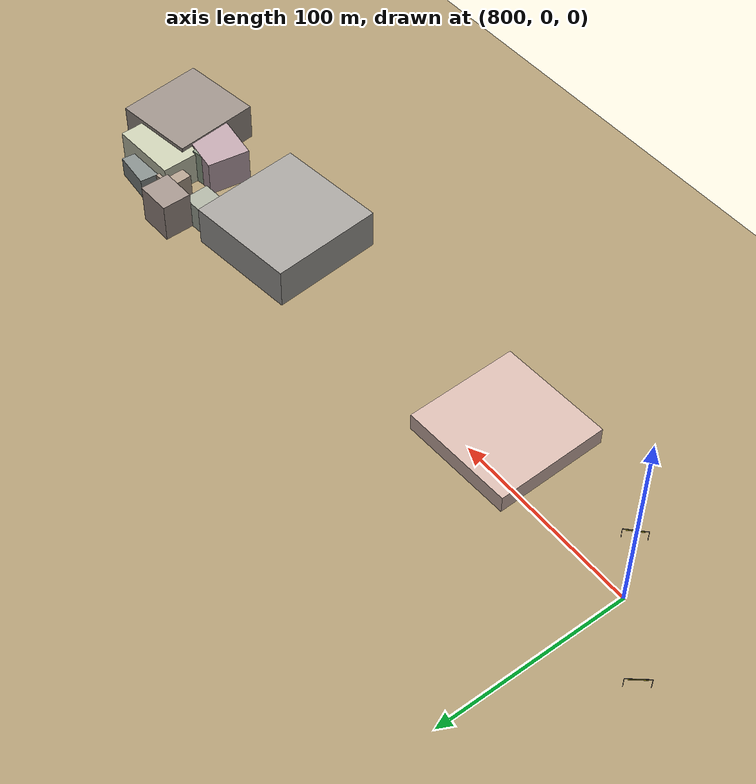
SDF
<sdf version="1.9">
 <world name="crossroad_world">
  <model name="ground_plane">
   <static>true</static>
   <pose>0 0 -0.05 0 0 0</pose>
   <link name="link">
    <collision name="collision">
     <geometry><plane><normal>0 0 1</normal><size>10000 10000</size></plane></geometry>
    </collision>
    <visual name="visual">
     <geometry><plane><normal>0 0 1</normal><size>15000 15000</size></plane></geometry>
     <material><ambient>0.68 0.60 0.45 1</ambient><diffuse>0.68 0.60 0.45 1</diffuse></material>
    </visual>
   </link>
  </model>
  <model name="gantry_14">
   <static>true</static>
   <pose>766.140 24.612 0 0 0 0.875</pose>
   <link name="link">
    <visual name="post_l">
     <pose>-5.700 0 2.925 0 0 0</pose>
     <geometry><cylinder><radius>0.1</radius><length>5.85</length></cylinder></geometry>
     <material><ambient>0.30 0.30 0.35 1</ambient><diffuse>0.30 0.30 0.35 1</diffuse></material>
    </visual>
    <visual name="post_r">
     <pose>5.700 0 2.925 0 0 0</pose>
     <geometry><cylinder><radius>0.1</radius><length>5.85</length></cylinder></geometry>
     <material><ambient>0.30 0.30 0.35 1</ambient><diffuse>0.30 0.30 0.35 1</diffuse></material>
    </visual>
    <visual name="beam">
     <pose>0 0 6.000 0 0 0</pose>
     <geometry><box><size>11.400 0.22 0.22</size></box></geometry>
     <material><ambient>0.30 0.30 0.35 1</ambient><diffuse>0.30 0.30 0.35 1</diffuse></material>
    </visual>
    <visual name="sign_border">
     <pose>0 -0.14 5.450 0 0 0</pose>
     <geometry><box><size>8.288 0.04 0.92</size></box></geometry>
     <material><ambient>0.90 0.85 0.10 1</ambient><diffuse>0.90 0.85 0.10 1</diffuse></material>
    </visual>
    <visual name="sign_panel">
     <pose>0 -0.15 5.450 0 0 0</pose>
     <geometry><box><size>8.208 0.05 0.86</size></box></geometry>
     <material><ambient>0.05 0.38 0.10 1</ambient><diffuse>0.05 0.38 0.10 1</diffuse></material>
    </visual>
    <collision name="col_post_l">
     <pose>-5.700 0 2.925 0 0 0</pose>
     <geometry><cylinder><radius>0.1</radius><length>5.85</length></cylinder></geometry>
    </collision>
    <collision name="col_post_r">
     <pose>5.700 0 2.925 0 0 0</pose>
     <geometry><cylinder><radius>0.1</radius><length>5.85</length></cylinder></geometry>
    </collision>
    <collision name="col_beam">
     <pose>0 0 6.000 0 0 0</pose>
     <geometry><box><size>11.400 0.22 0.22</size></box></geometry>
    </collision>
   </link>
  </model>
  <model name="gantry_135">
   <static>true</static>
   <pose>819.424 -24.411 0 0 0 0.772</pose>
   <link name="link">
    <visual name="post_l">
     <pose>-5.700 0 2.925 0 0 0</pose>
     <geometry><cylinder><radius>0.1</radius><length>5.85</length></cylinder></geometry>
     <material><ambient>0.30 0.30 0.35 1</ambient><diffuse>0.30 0.30 0.35 1</diffuse></material>
    </visual>
    <visual name="post_r">
     <pose>5.700 0 2.925 0 0 0</pose>
     <geometry><cylinder><radius>0.1</radius><length>5.85</length></cylinder></geometry>
     <material><ambient>0.30 0.30 0.35 1</ambient><diffuse>0.30 0.30 0.35 1</diffuse></material>
    </visual>
    <visual name="beam">
     <pose>0 0 6.000 0 0 0</pose>
     <geometry><box><size>11.400 0.22 0.22</size></box></geometry>
     <material><ambient>0.30 0.30 0.35 1</ambient><diffuse>0.30 0.30 0.35 1</diffuse></material>
    </visual>
    <visual name="sign_border">
     <pose>0 -0.14 5.450 0 0 0</pose>
     <geometry><box><size>8.288 0.04 0.92</size></box></geometry>
     <material><ambient>0.90 0.85 0.10 1</ambient><diffuse>0.90 0.85 0.10 1</diffuse></material>
    </visual>
    <visual name="sign_panel">
     <pose>0 -0.15 5.450 0 0 0</pose>
     <geometry><box><size>8.208 0.05 0.86</size></box></geometry>
     <material><ambient>0.05 0.38 0.10 1</ambient><diffuse>0.05 0.38 0.10 1</diffuse></material>
    </visual>
    <collision name="col_post_l">
     <pose>-5.700 0 2.925 0 0 0</pose>
     <geometry><cylinder><radius>0.1</radius><length>5.85</length></cylinder></geometry>
    </collision>
    <collision name="col_post_r">
     <pose>5.700 0 2.925 0 0 0</pose>
     <geometry><cylinder><radius>0.1</radius><length>5.85</length></cylinder></geometry>
    </collision>
    <collision name="col_beam">
     <pose>0 0 6.000 0 0 0</pose>
     <geometry><box><size>11.400 0.22 0.22</size></box></geometry>
    </collision>
   </link>
  </model>
  <model name="building_34">
   <static>true</static>
   <pose>1101.376 26.436 10.469 0 0 0.029</pose>
   <link name="link">
    <visual name="body">
     <geometry><box><size>18.91 15.57 20.94</size></box></geometry>
     <material><ambient>0.63 0.57 0.54 1</ambient><diffuse>0.63 0.57 0.54 1</diffuse></material>
    </visual>
    <collision name="col"><geometry><box><size>18.91 15.57 20.94</size></box></geometry></collision>
   </link>
  </model>
  <model name="building_75">
   <static>true</static>
   <pose>1090.297 11.362 7.670 0 0 0.067</pose>
   <link name="link">
    <visual name="body">
     <geometry><box><size>14.14 13.79 15.34</size></box></geometry>
     <material><ambient>0.67 0.69 0.63 1</ambient><diffuse>0.67 0.69 0.63 1</diffuse></material>
    </visual>
    <collision name="col"><geometry><box><size>14.14 13.79 15.34</size></box></geometry></collision>
   </link>
  </model>
  <model name="building_81">
   <static>true</static>
   <pose>1116.715 12.562 6.342 0 0 0.086</pose>
   <link name="link">
    <visual name="body">
     <geometry><box><size>12.01 12.55 12.68</size></box></geometry>
     <material><ambient>0.69 0.62 0.55 1</ambient><diffuse>0.69 0.62 0.55 1</diffuse></material>
    </visual>
    <collision name="col"><geometry><box><size>12.01 12.55 12.68</size></box></geometry></collision>
   </link>
  </model>
  <model name="building_82">
   <static>true</static>
   <pose>1115.560 -7.215 9.482 0 0 0.148</pose>
   <link name="link">
    <visual name="body">
     <geometry><box><size>10.16 9.40 18.96</size></box></geometry>
     <material><ambient>0.57 0.63 0.54 1</ambient><diffuse>0.57 0.63 0.54 1</diffuse></material>
    </visual>
    <collision name="col"><geometry><box><size>10.16 9.40 18.96</size></box></geometry></collision>
   </link>
  </model>
  <model name="building_83">
   <static>true</static>
   <pose>1116.770 -14.613 9.583 0 0 -0.137</pose>
   <link name="link">
    <visual name="body">
     <geometry><box><size>25.24 22.70 19.17</size></box></geometry>
     <material><ambient>0.74 0.64 0.67 1</ambient><diffuse>0.74 0.64 0.67 1</diffuse></material>
    </visual>
    <collision name="col"><geometry><box><size>25.24 22.70 19.17</size></box></geometry></collision>
   </link>
  </model>
  <model name="building_84">
   <static>true</static>
   <pose>1133.810 16.089 5.488 0 0 -0.082</pose>
   <link name="link">
    <visual name="body">
     <geometry><box><size>20.21 20.44 10.98</size></box></geometry>
     <material><ambient>0.52 0.55 0.54 1</ambient><diffuse>0.52 0.55 0.54 1</diffuse></material>
    </visual>
    <collision name="col"><geometry><box><size>20.21 20.44 10.98</size></box></geometry></collision>
   </link>
  </model>
  <model name="building_85">
   <static>true</static>
   <pose>1136.652 -1.742 8.907 0 0 0.051</pose>
   <link name="link">
    <visual name="body">
     <geometry><box><size>36.93 39.43 17.81</size></box></geometry>
     <material><ambient>0.78 0.79 0.69 1</ambient><diffuse>0.78 0.79 0.69 1</diffuse></material>
    </visual>
    <collision name="col"><geometry><box><size>36.93 39.43 17.81</size></box></geometry></collision>
   </link>
  </model>
  <model name="building_647">
   <static>true</static>
   <pose>1053.793 -11.705 10.723 0 0 0.105</pose>
   <link name="link">
    <visual name="body">
     <geometry><box><size>60.00 60.00 21.45</size></box></geometry>
     <material><ambient>0.64 0.63 0.61 1</ambient><diffuse>0.64 0.63 0.61 1</diffuse></material>
    </visual>
    <collision name="col"><geometry><box><size>60.00 60.00 21.45</size></box></geometry></collision>
   </link>
  </model>
  <model name="building_662">
   <static>true</static>
   <pose>1148.521 -17.853 10.001 0 0 0.132</pose>
   <link name="link">
    <visual name="body">
     <geometry><box><size>44.43 46.42 20.00</size></box></geometry>
     <material><ambient>0.60 0.56 0.53 1</ambient><diffuse>0.60 0.56 0.53 1</diffuse></material>
    </visual>
    <collision name="col"><geometry><box><size>44.43 46.42 20.00</size></box></geometry></collision>
   </link>
  </model>
  <model name="building_709">
   <static>true</static>
   <pose>895.634 -17.599 4.653 0 0 0.036</pose>
   <link name="link">
    <visual name="body">
     <geometry><box><size>60.00 60.00 9.31</size></box></geometry>
     <material><ambient>0.83 0.72 0.68 1</ambient><diffuse>0.83 0.72 0.68 1</diffuse></material>
    </visual>
    <collision name="col"><geometry><box><size>60.00 60.00 9.31</size></box></geometry></collision>
   </link>
  </model>
 </world>
</sdf>
